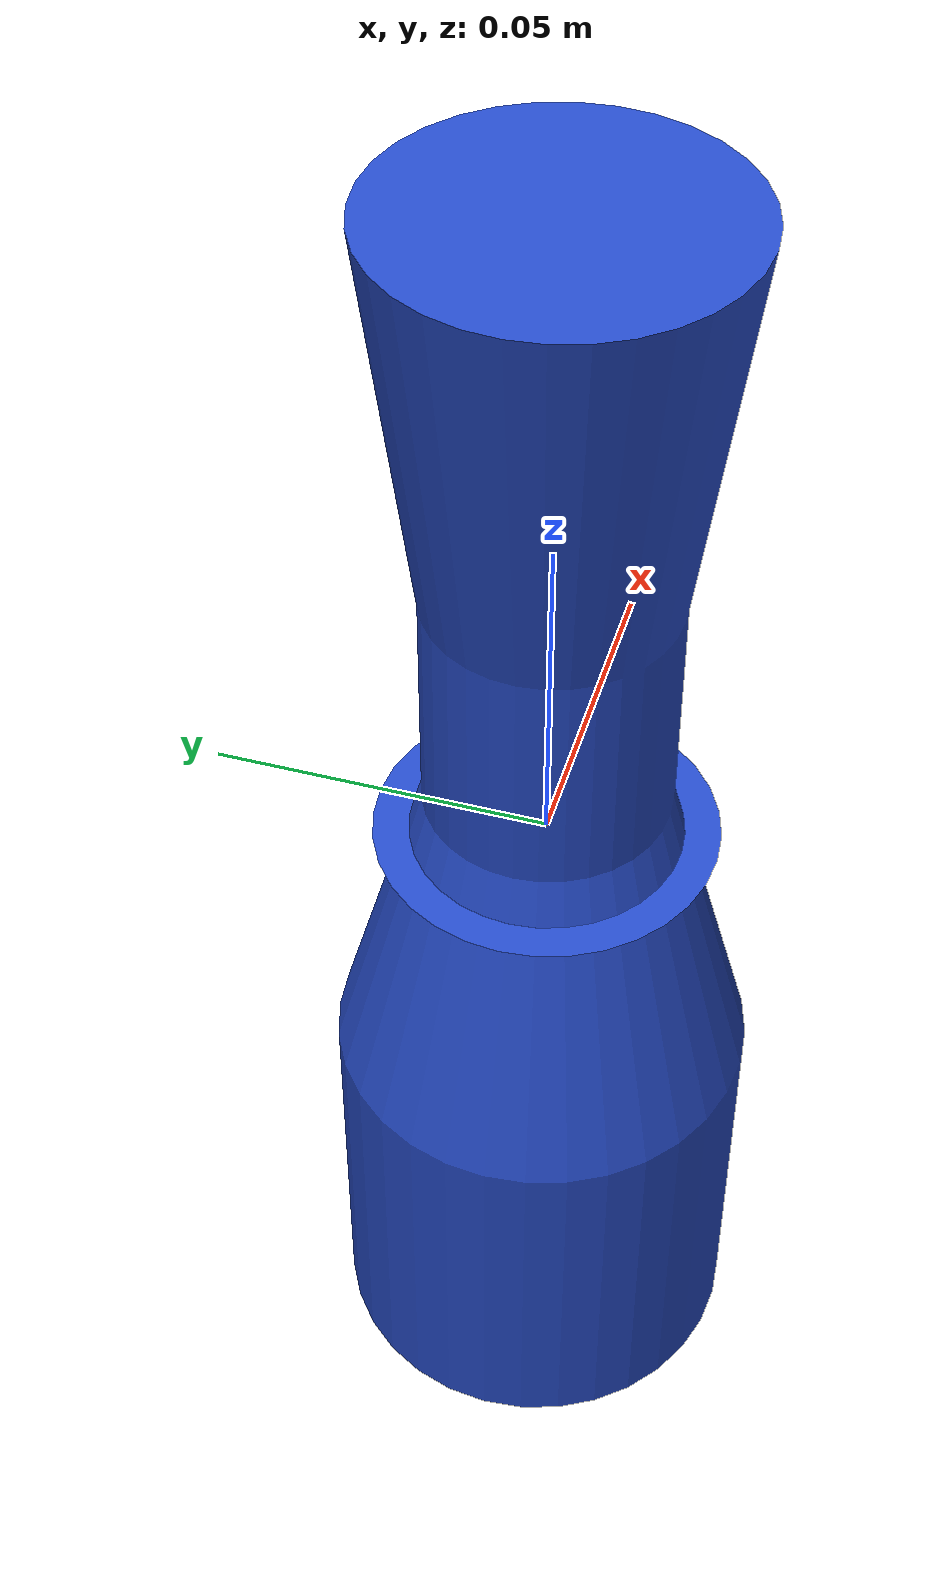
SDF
<?xml version='1.0'?>
<sdf version="1.4">
<model name="cylinder_5_5_20">

    <static>0</static>

    <link name="cylinder">
      <inertial>
        <mass value="0.7"/>
        <!-- Inertial Parameters ixx=iyy=1/12*m*(3r^2+h^2) izz = 1/2mr^2-->
        <inertia
          ixx="0.0007916" ixy="0.0" ixz="0.0"
          iyy="0.0007916" iyz="0.0"
          izz="0.00025"/>
      </inertial>

      <collision name="colision1">
        <pose>0 0 0 0 0 0</pose>
        <geometry>
          <mesh>
            <uri>model://cylinder_modified/cylinder_mod.stl</uri>
	    			<scale> 1 1 1 </scale>
          </mesh>
        </geometry>
        <surface>
          <friction>
            <ode>
              <mu>200</mu>
              <mu2>100</mu2>
              <slip1>0.0</slip1>
              <slip2>0.0</slip2>
            </ode>
          </friction>
        </surface>
      </collision>

      <visual name="visual1">
        <pose>0 0 0 0 0 0</pose>
        <geometry>
          <mesh>
            <uri>model://cylinder_modified/cylinder_mod.stl</uri>
	    			<scale> 1 1 1 </scale>
          </mesh>
        </geometry>
        <material>
          <script>
            <uri>file://media/materials/scripts/gazebo.material</uri>
            <name>Gazebo/Blue</name>
          </script>
        </material>
      </visual>

      <self_collide>0</self_collide>
      <kinematic>1</kinematic>
      <gravity>1</gravity>
    </link>

  </model>
</sdf>
